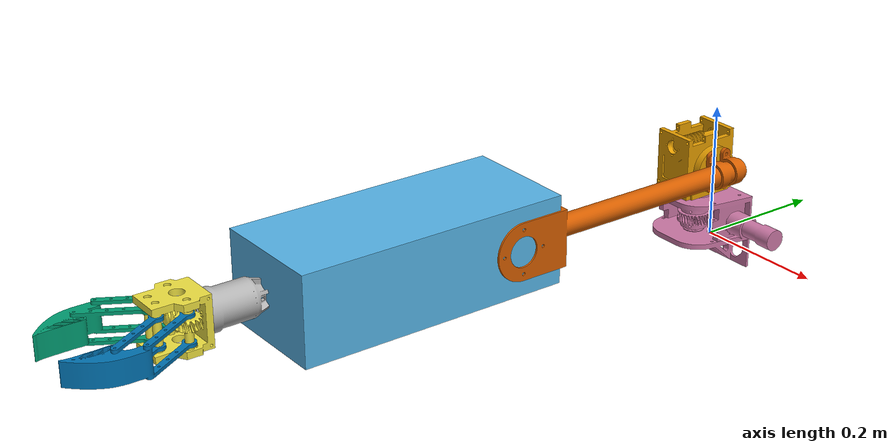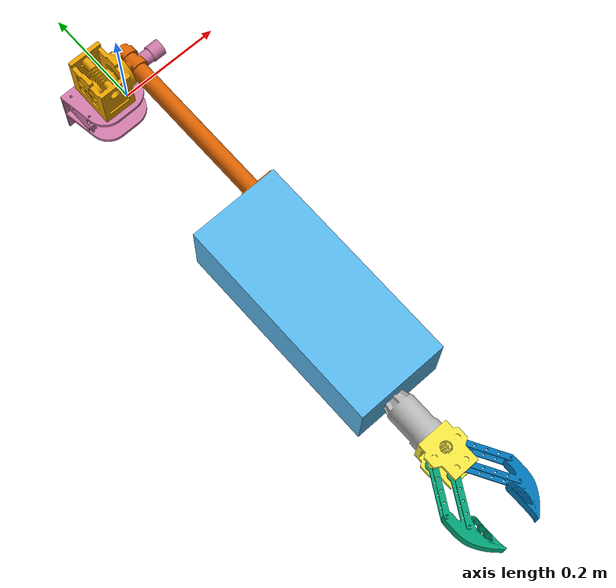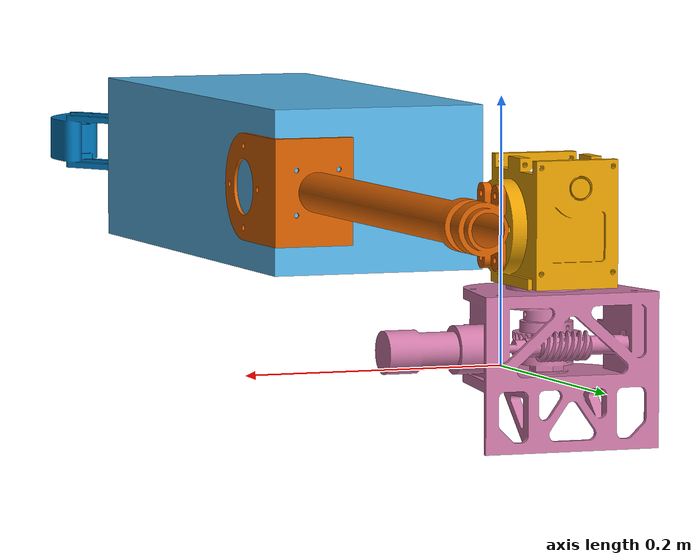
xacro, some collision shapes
<?xml version="1.0"?>
<robot xmlns:xacro="http://www.ros.org/wiki/xacro" name="rover_arm">

  <xacro:macro name="aluminum_material" params="link_name">
    <gazebo reference="${link_name}">
      <visual>
        <material>
          <ambient>0.6 0.6 0.6 1.0</ambient>
          <diffuse>0.7 0.7 0.7 1.0</diffuse>
          <specular>0.8 0.8 0.8 1.0</specular>
        </material>
      </visual>
      <mu1>0.2</mu1>
      <mu2>0.2</mu2>
    </gazebo>
  </xacro:macro>

  <link name="base_link">
    <inertial>
      <origin xyz="0.001193 0.001028 0.047499" rpy="0 0 -1.570796" />
      <mass value="1.062" />
      <inertia ixx="0.001357" ixy="0" ixz="0" iyy="0.001521" iyz="0" izz="0.001281" />
    </inertial>
    <visual>
      <origin xyz="0.001193 0.001028 0.047499" rpy="0 0 0" />
      <geometry>
        <mesh filename="package://rover_arm_description/urdf/meshes/base_link_visual.stl" />
      </geometry>
    </visual>
    <collision>
      <origin xyz="0.001193 0.001028 0.047499" rpy="0 0 -1.570796" />
      <geometry>
        <box size="0.090314 0.079456 0.094999" />
      </geometry>
    </collision>
  </link>
  <xacro:aluminum_material link_name="base_link"/>

  <link name="elbow_link">
    <inertial>
      <origin xyz="0.139619 -0.000409 0.08721" rpy="1.570796 0 -1.570796" />
      <mass value="2.571" />
      <inertia ixx="0.042429" ixy="0" ixz="0" iyy="0.039541" iyz="0" izz="0.010207" />
    </inertial>
    <visual>
      <origin xyz="0.139619 -0.000409 0.08721" rpy="-1.570796 1.570796 0" />
      <geometry>
        <mesh filename="package://rover_arm_description/urdf/meshes/elbow_link_visual.stl" />
      </geometry>
    </visual>
    <collision>
      <origin xyz="0.139619 -0.000409 0.08721" rpy="1.570796 0 -1.570796" />
      <geometry>
        <box size="0.130697 0.174815 0.409236" />
      </geometry>
    </collision>
  </link>
  <xacro:aluminum_material link_name="elbow_link"/>

  <link name="left_finger_link">
    <inertial>
      <origin xyz="-0.013622 -0.083285 0" rpy="0 0 -3.141593" />
      <mass value="0.132" />
      <inertia ixx="0.000455" ixy="0" ixz="0" iyy="0.000455" iyz="0" izz="0.000455" />
    </inertial>
    <visual>
      <origin xyz="-0.013622 -0.083285 0" rpy="0 0 0" />
      <geometry>
        <mesh filename="package://rover_arm_description/urdf/meshes/left_finger_link_visual.stl" />
      </geometry>
    </visual>
    <collision>
      <origin xyz="-0.013622 -0.083285 0" rpy="0 0 -3.141593" />
      <geometry>
        <sphere radius="0.092785" />
      </geometry>
    </collision>
  </link>
  <xacro:aluminum_material link_name="left_finger_link"/>

  <link name="palm_link">
    <inertial>
      <origin xyz="-0.003068 0.039999 0" rpy="0 0 1.570796" />
      <mass value="0.453" />
      <inertia ixx="0.000454" ixy="0" ixz="0" iyy="0.000454" iyz="0" izz="0.000483" />
    </inertial>
    <visual>
      <origin xyz="-0.003068 0.039999 0" rpy="0 0 3.141593" />
      <geometry>
        <mesh filename="package://rover_arm_description/urdf/meshes/palm_link_visual.stl" />
      </geometry>
    </visual>
    <collision>
      <origin xyz="-0.003068 0.039999 0" rpy="0 0 1.570796" />
      <geometry>
        <box size="0.079999 0.079998 0.074999" />
      </geometry>
    </collision>
  </link>
  <xacro:aluminum_material link_name="palm_link"/>

  <link name="right_finger_link">
    <inertial>
      <origin xyz="0.013622 -0.083285 0" rpy="3.141593 0 0" />
      <mass value="0.132" />
      <inertia ixx="0.000455" ixy="0" ixz="0" iyy="0.000455" iyz="0" izz="0.000455" />
    </inertial>
    <visual>
      <origin xyz="0.013622 -0.083285 0" rpy="0 0 0" />
      <geometry>
        <mesh filename="package://rover_arm_description/urdf/meshes/right_finger_link_visual.stl" />
      </geometry>
    </visual>
    <collision>
      <origin xyz="0.013622 -0.083285 0" rpy="3.141593 0 0" />
      <geometry>
        <sphere radius="0.092785" />
      </geometry>
    </collision>
  </link>
  <xacro:aluminum_material link_name="right_finger_link"/>

  <link name="shoulder_link">
    <inertial>
      <origin xyz="0 -0.208547 0.0205" rpy="0 0 0" />
      <mass value="0.505" />
      <inertia ixx="0.009733" ixy="0" ixz="0" iyy="0.000482" iyz="0" izz="0.009859" />
    </inertial>
    <visual>
      <origin xyz="-0.0205 -0.208547 0" rpy="0 -3.141593 0" />
      <geometry>
        <mesh filename="package://rover_arm_description/urdf/meshes/shoulder_link_visual.stl" />
      </geometry>
    </visual>
    <collision>
      <origin xyz="0 -0.208547 0.0205" rpy="0 0 0" />
      <geometry>
        <box size="0.084999 0.476494 0.064999" />
      </geometry>
    </collision>
  </link>
  <xacro:aluminum_material link_name="shoulder_link"/>

  <link name="stand_link">
    <inertial>
      <mass value="1.897" />
      <inertia ixx="0.003948" ixy="0" ixz="0" iyy="0.009139" iyz="0" izz="0.00861" />
    </inertial>
    <visual>
      <geometry>
        <mesh filename="package://rover_arm_description/urdf/meshes/stand_link_visual.stl" />
      </geometry>
    </visual>
    <collision>
      <geometry>
        <box size="0.20892 0.104 0.119" />
      </geometry>
    </collision>
  </link>
  <xacro:aluminum_material link_name="stand_link"/>

  <link name="wrist_link">
    <inertial>
      <origin xyz="0 -0.064871 0" rpy="0 1.570796 0" />
      <mass value="0.45" />
      <inertia ixx="0.001685" ixy="0" ixz="0" iyy="0.000436" iyz="0" izz="0.001617" />
    </inertial>
    <visual>
      <origin xyz="0 -0.06487 0" rpy="0 -3.141593 0" />
      <geometry>
        <mesh filename="package://rover_arm_description/urdf/meshes/wrist_link_visual.stl" />
      </geometry>
    </visual>
    <collision>
      <origin xyz="0 -0.064871 0" rpy="0 1.570796 0" />
      <geometry>
        <box size="0.069999 0.195497 0.081999" />
      </geometry>
    </collision>
  </link>
  <xacro:aluminum_material link_name="wrist_link"/>

  <joint name="base_link_joint" type="revolute">
    <origin xyz="-0.03596 0.000387 0.0595" rpy="0 0 0" />
    <parent link="stand_link" />
    <child link="base_link" />
    <axis xyz="0 0 1" />
    <limit effort="34.32" velocity="1" lower="-1.570795" upper="1.570795" />
  </joint>
  <joint name="elbow_link_joint" type="revolute">
    <origin xyz="-0.049999 -0.404295 0" rpy="-1.570797 0 -1.570796" />
    <parent link="shoulder_link" />
    <child link="elbow_link" />
    <axis xyz="0 0 1" />
    <limit effort="123.559998" velocity="1" lower="-3.141593" upper="3.141593" />
  </joint>
  <joint name="left_finger_link_joint" type="revolute">
    <origin xyz="0.024931 0.032 0" rpy="0 0 -3.141593" />
    <parent link="palm_link" />
    <child link="left_finger_link" />
    <axis xyz="0 0 1" />
    <limit effort="5.15" velocity="1" lower="-1.570795" upper="0.785398" />
  </joint>
  <joint name="palm_link_joint" type="revolute">
    <origin xyz="-0.000022 -0.162619 -0.00015" rpy="3.141593 0 0" />
    <parent link="wrist_link" />
    <child link="palm_link" />
    <axis xyz="0 1 0" />
    <limit effort="10" velocity="1" lower="-3.141593" upper="3.141593" />
  </joint>
  <joint name="right_finger_link_joint" type="revolute">
    <origin xyz="-0.025098 0.032462 -0.002467" rpy="0 0 3.141593" />
    <parent link="palm_link" />
    <child link="right_finger_link" />
    <axis xyz="0 0 1" />
    <limit effort="5.15" velocity="1" lower="-0.785398" upper="1.570795" />
  </joint>
  <joint name="shoulder_link_joint" type="revolute">
    <origin xyz="0.040749 -0.000139 0.044051" rpy="0 3.141593 0" />
    <parent link="base_link" />
    <child link="shoulder_link" />
    <axis xyz="1 0 0" />
    <limit effort="137.300003" velocity="1" lower="-0.3927" upper="1.5708" />
  </joint>
  <joint name="wrist_link_joint" type="revolute">
    <origin xyz="0.266997 -0.000647 0.102497" rpy="1.570796 -1.570796 0" />
    <parent link="elbow_link" />
    <child link="wrist_link" />
    <axis xyz="1 0 0" />
    <limit effort="27.459999" velocity="1" lower="-1.570795" upper="1.570795" />
  </joint>

  <xacro:macro name="joint_interface" params="joint_name">
      <joint name="${joint_name}">
        <command_interface name="velocity"/>
        <state_interface name="position"/>
        <state_interface name="velocity"/>
      </joint>
  </xacro:macro>

  <ros2_control name="RoverArmHardware" type="system">
    <hardware>
      <plugin>rover_arm_hardware/RoverArmHardware</plugin>
      <param name="kp">40.0</param>
      <param name="ki">5.0</param>
      <param name="pwm_limit">255.0</param>
    </hardware>

    <xacro:joint_interface joint_name="base_link_joint" />
    <xacro:joint_interface joint_name="shoulder_link_joint" />
    <xacro:joint_interface joint_name="elbow_link_joint" />
    <xacro:joint_interface joint_name="wrist_link_joint" />
    <xacro:joint_interface joint_name="palm_link_joint" />
    <xacro:joint_interface joint_name="left_finger_link_joint" />
    <xacro:joint_interface joint_name="right_finger_link_joint" />
  </ros2_control>

</robot>
